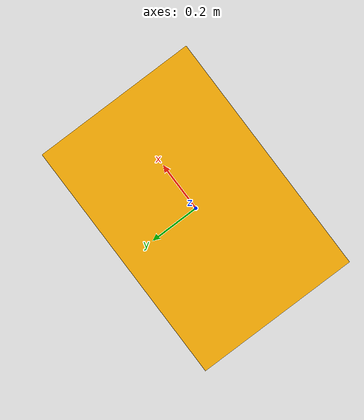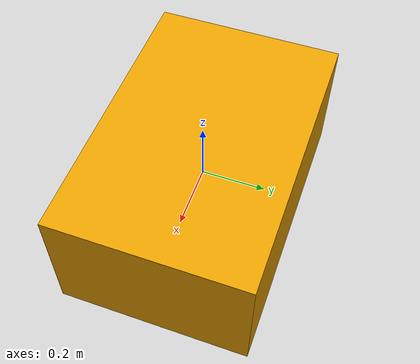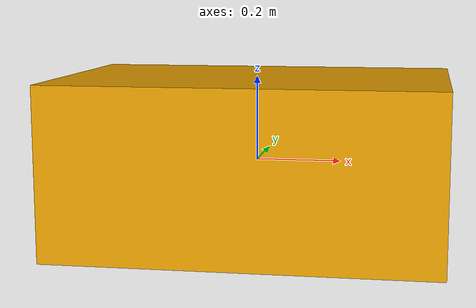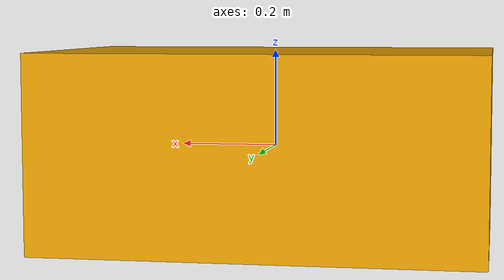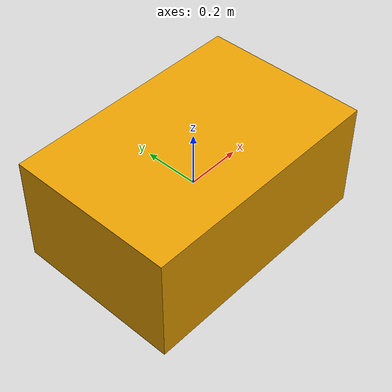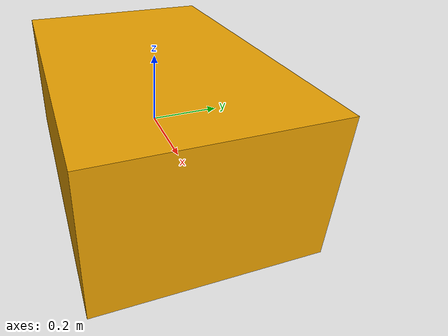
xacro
<?xml version="1.0"?>
<!-- 校园低速车 URDF 骨架：base_link + 激光/IMU/RTK 天线外参 -->
<!-- 外参值 W3 标定后回填（SOP 第 0 步）；标定文件随数据一起上传（14 章采集要求） -->
<robot name="campus_bot">
  <link name="base_link">
    <visual><geometry><box size="0.9 0.6 0.4"/></geometry></visual>
    <inertial><mass value="60"/><inertia ixx="5.0" iyy="8.0" izz="10.0" ixy="0" ixz="0" iyz="0"/></inertial>
  </link>

  <link name="laser_link"/>
  <joint name="laser_joint" type="fixed">
    <parent link="base_link"/><child link="laser_link"/>
    <origin xyz="0.45 0 0.35" rpy="0 0 0"/>   <!-- TODO(W3): 实测回填 -->
  </joint>

  <link name="imu_link"/>
  <joint name="imu_joint" type="fixed">
    <parent link="base_link"/><child link="imu_link"/>
    <origin xyz="0.0 0 0.15" rpy="0 0 0"/>
  </joint>

  <link name="gps_antenna_link"/>
  <joint name="gps_antenna_joint" type="fixed">
    <parent link="base_link"/><child link="gps_antenna_link"/>
    <origin xyz="-0.2 0 0.8" rpy="0 0 0"/>    <!-- RTK 天线，杆臂影响 navsat_transform -->
  </joint>
</robot>
